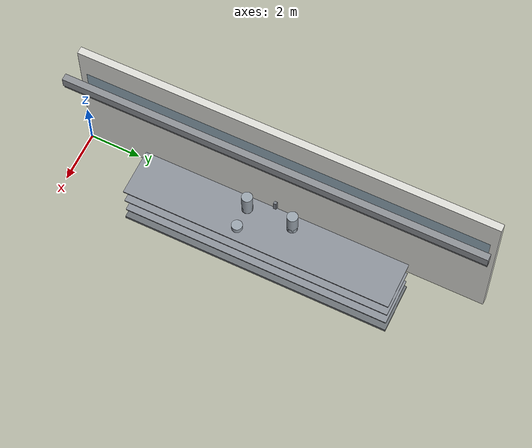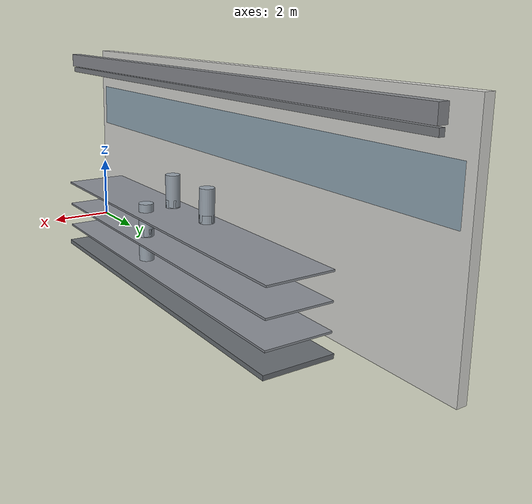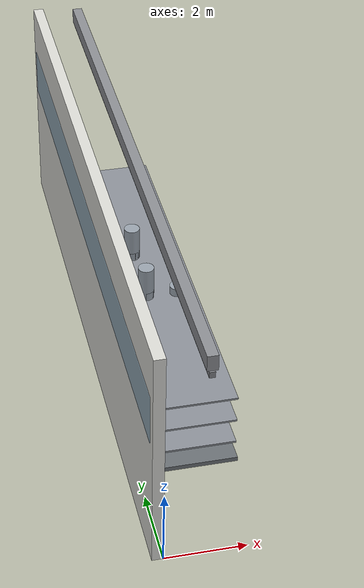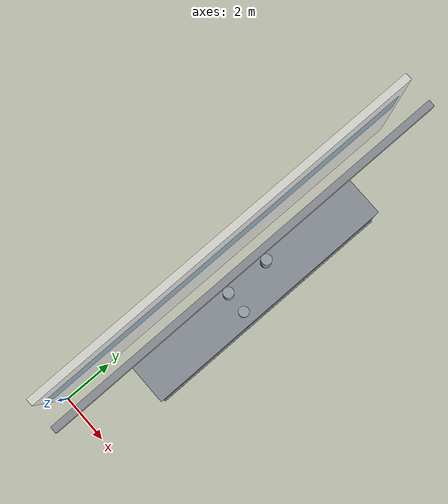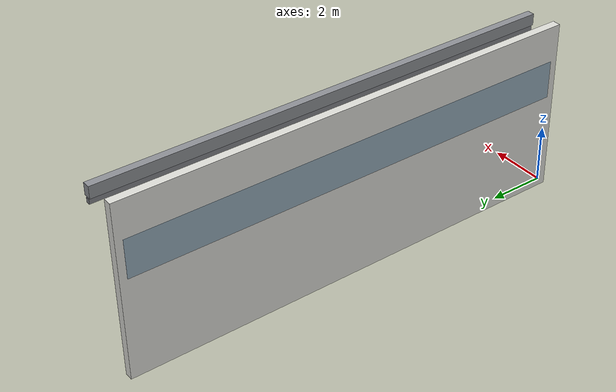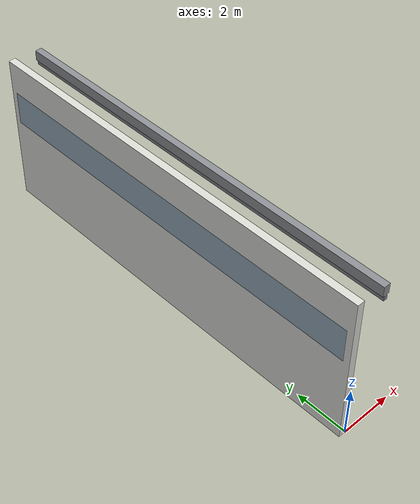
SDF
<sdf version="1.10">
 <world name="textile_mill">
  <model name="wall_west">
   <static>true</static>
   <pose>-0.140 8.000 3.000 0 0 0</pose>
   <link name="l">
    <collision name="c"><geometry><box><size>0.280 16.000 6.000</size></box></geometry></collision>
    <visual name="v">
     <geometry><box><size>0.280 16.000 6.000</size></box></geometry>
     <material>
      <ambient>0.860 0.860 0.840 1.0</ambient>
      <diffuse>0.860 0.860 0.840 1.0</diffuse>
      <specular>0.18 0.18 0.18 1</specular>
      <pbr><metal><roughness>0.9</roughness><metalness>0.0</metalness></metal></pbr>
     </material>
    </visual>
   </link>
  </model>
  <model name="win_w">
   <static>true</static>
   <pose>-0.140 8.000 4.100 0 0 0</pose>
   <link name="l">
    <collision name="c"><geometry><box><size>0.300 15.500 1.300</size></box></geometry></collision>
    <visual name="v">
     <geometry><box><size>0.300 15.500 1.300</size></box></geometry>
     <material>
      <ambient>0.420 0.580 0.700 0.55</ambient>
      <diffuse>0.420 0.580 0.700 0.55</diffuse>
      <specular>0.18 0.18 0.18 1</specular>
      <pbr><metal><roughness>0.15</roughness><metalness>0.1</metalness></metal></pbr>
     </material>
    </visual>
   </link>
  </model>
  <model name="truss_0">
   <static>true</static>
   <pose>1.000 8.000 5.700 0 0 0</pose>
   <link name="l">
    <collision name="c"><geometry><box><size>0.260 16.000 0.400</size></box></geometry></collision>
    <visual name="v">
     <geometry><box><size>0.260 16.000 0.400</size></box></geometry>
     <material>
      <ambient>0.550 0.560 0.580 1.0</ambient>
      <diffuse>0.550 0.560 0.580 1.0</diffuse>
      <specular>0.18 0.18 0.18 1</specular>
      <pbr><metal><roughness>0.4</roughness><metalness>0.6</metalness></metal></pbr>
     </material>
    </visual>
   </link>
  </model>
  <model name="truss_lo_0">
   <static>true</static>
   <pose>1.000 8.000 5.380 0 0 0</pose>
   <link name="l">
    <collision name="c"><geometry><box><size>0.140 16.000 0.160</size></box></geometry></collision>
    <visual name="v">
     <geometry><box><size>0.140 16.000 0.160</size></box></geometry>
     <material>
      <ambient>0.500 0.510 0.530 1.0</ambient>
      <diffuse>0.500 0.510 0.530 1.0</diffuse>
      <specular>0.18 0.18 0.18 1</specular>
      <pbr><metal><roughness>0.65</roughness><metalness>0.6</metalness></metal></pbr>
     </material>
    </visual>
   </link>
  </model>
  <model name="dash_0">
   <static>true</static>
   <pose>1.800 8.000 0.012 0 0 0</pose>
   <link name="l">
    <visual name="v">
     <geometry><box><size>0.700 0.090 0.020</size></box></geometry>
     <material>
      <ambient>0.900 0.900 0.860 1.0</ambient>
      <diffuse>0.900 0.900 0.860 1.0</diffuse>
      <specular>0.18 0.18 0.18 1</specular>
      <pbr><metal><roughness>0.65</roughness><metalness>0.0</metalness></metal></pbr>
     </material>
    </visual>
   </link>
  </model>
  <model name="rack_empty_base">
   <static>true</static>
   <pose>1.550 8.000 0.060 0 0 0</pose>
   <link name="l">
    <collision name="c"><geometry><box><size>1.900 10.500 0.120</size></box></geometry></collision>
    <visual name="v">
     <geometry><box><size>1.900 10.500 0.120</size></box></geometry>
     <material>
      <ambient>0.420 0.440 0.460 1.0</ambient>
      <diffuse>0.420 0.440 0.460 1.0</diffuse>
      <specular>0.18 0.18 0.18 1</specular>
      <pbr><metal><roughness>0.65</roughness><metalness>0.5</metalness></metal></pbr>
     </material>
    </visual>
   </link>
  </model>
  <model name="rack_empty_shelf_0">
   <static>true</static>
   <pose>1.550 8.000 0.620 0 0 0</pose>
   <link name="l">
    <collision name="c"><geometry><box><size>1.800 10.440 0.050</size></box></geometry></collision>
    <visual name="v">
     <geometry><box><size>1.800 10.440 0.050</size></box></geometry>
     <material>
      <ambient>0.550 0.570 0.600 1.0</ambient>
      <diffuse>0.550 0.570 0.600 1.0</diffuse>
      <specular>0.18 0.18 0.18 1</specular>
      <pbr><metal><roughness>0.4</roughness><metalness>0.55</metalness></metal></pbr>
     </material>
    </visual>
   </link>
  </model>
  <model name="rack_empty_can_0_2_a">
   <static>true</static>
   <pose>1.132 7.110 1.120 0.0000 0.0000 0.0000</pose>
   <link name="l">
    <collision name="c">
     <geometry><cylinder><radius>0.205</radius><length>0.900</length></cylinder></geometry>
    </collision>
    <visual name="v">
     <geometry><cylinder><radius>0.205</radius><length>0.900</length></cylinder></geometry>
     <material>
      <ambient>0.600 0.640 0.680 1.0</ambient>
      <diffuse>0.600 0.640 0.680 1.0</diffuse>
      <specular>0.18 0.18 0.18 1</specular>
      <pbr><metal><roughness>0.6</roughness><metalness>0.0</metalness></metal></pbr>
     </material>
    </visual>
   </link>
  </model>
  <model name="rack_empty_can_0_2_b">
   <static>true</static>
   <pose>1.968 7.110 1.120 0.0000 0.0000 0.0000</pose>
   <link name="l">
    <collision name="c">
     <geometry><cylinder><radius>0.205</radius><length>0.900</length></cylinder></geometry>
    </collision>
    <visual name="v">
     <geometry><cylinder><radius>0.205</radius><length>0.900</length></cylinder></geometry>
     <material>
      <ambient>0.600 0.640 0.680 1.0</ambient>
      <diffuse>0.600 0.640 0.680 1.0</diffuse>
      <specular>0.18 0.18 0.18 1</specular>
      <pbr><metal><roughness>0.6</roughness><metalness>0.0</metalness></metal></pbr>
     </material>
    </visual>
   </link>
  </model>
  <model name="rack_empty_can_0_3_a">
   <static>true</static>
   <pose>1.132 8.890 1.120 0.0000 0.0000 0.0000</pose>
   <link name="l">
    <collision name="c">
     <geometry><cylinder><radius>0.205</radius><length>0.900</length></cylinder></geometry>
    </collision>
    <visual name="v">
     <geometry><cylinder><radius>0.205</radius><length>0.900</length></cylinder></geometry>
     <material>
      <ambient>0.600 0.640 0.680 1.0</ambient>
      <diffuse>0.600 0.640 0.680 1.0</diffuse>
      <specular>0.18 0.18 0.18 1</specular>
      <pbr><metal><roughness>0.6</roughness><metalness>0.0</metalness></metal></pbr>
     </material>
    </visual>
   </link>
  </model>
  <model name="rack_empty_shelf_1">
   <static>true</static>
   <pose>1.550 8.000 1.320 0 0 0</pose>
   <link name="l">
    <collision name="c"><geometry><box><size>1.800 10.440 0.050</size></box></geometry></collision>
    <visual name="v">
     <geometry><box><size>1.800 10.440 0.050</size></box></geometry>
     <material>
      <ambient>0.550 0.570 0.600 1.0</ambient>
      <diffuse>0.550 0.570 0.600 1.0</diffuse>
      <specular>0.18 0.18 0.18 1</specular>
      <pbr><metal><roughness>0.4</roughness><metalness>0.55</metalness></metal></pbr>
     </material>
    </visual>
   </link>
  </model>
  <model name="rack_empty_can_1_2_a">
   <static>true</static>
   <pose>1.132 7.110 1.820 0.0000 0.0000 0.0000</pose>
   <link name="l">
    <collision name="c">
     <geometry><cylinder><radius>0.205</radius><length>0.900</length></cylinder></geometry>
    </collision>
    <visual name="v">
     <geometry><cylinder><radius>0.205</radius><length>0.900</length></cylinder></geometry>
     <material>
      <ambient>0.600 0.640 0.680 1.0</ambient>
      <diffuse>0.600 0.640 0.680 1.0</diffuse>
      <specular>0.18 0.18 0.18 1</specular>
      <pbr><metal><roughness>0.6</roughness><metalness>0.0</metalness></metal></pbr>
     </material>
    </visual>
   </link>
  </model>
  <model name="rack_empty_can_1_2_b">
   <static>true</static>
   <pose>1.968 7.110 1.820 0.0000 0.0000 0.0000</pose>
   <link name="l">
    <collision name="c">
     <geometry><cylinder><radius>0.205</radius><length>0.900</length></cylinder></geometry>
    </collision>
    <visual name="v">
     <geometry><cylinder><radius>0.205</radius><length>0.900</length></cylinder></geometry>
     <material>
      <ambient>0.600 0.640 0.680 1.0</ambient>
      <diffuse>0.600 0.640 0.680 1.0</diffuse>
      <specular>0.18 0.18 0.18 1</specular>
      <pbr><metal><roughness>0.6</roughness><metalness>0.0</metalness></metal></pbr>
     </material>
    </visual>
   </link>
  </model>
  <model name="rack_empty_can_1_3_a">
   <static>true</static>
   <pose>1.132 8.890 1.820 0.0000 0.0000 0.0000</pose>
   <link name="l">
    <collision name="c">
     <geometry><cylinder><radius>0.205</radius><length>0.900</length></cylinder></geometry>
    </collision>
    <visual name="v">
     <geometry><cylinder><radius>0.205</radius><length>0.900</length></cylinder></geometry>
     <material>
      <ambient>0.600 0.640 0.680 1.0</ambient>
      <diffuse>0.600 0.640 0.680 1.0</diffuse>
      <specular>0.18 0.18 0.18 1</specular>
      <pbr><metal><roughness>0.6</roughness><metalness>0.0</metalness></metal></pbr>
     </material>
    </visual>
   </link>
  </model>
  <model name="rack_empty_shelf_2">
   <static>true</static>
   <pose>1.550 8.000 2.020 0 0 0</pose>
   <link name="l">
    <collision name="c"><geometry><box><size>1.800 10.440 0.050</size></box></geometry></collision>
    <visual name="v">
     <geometry><box><size>1.800 10.440 0.050</size></box></geometry>
     <material>
      <ambient>0.550 0.570 0.600 1.0</ambient>
      <diffuse>0.550 0.570 0.600 1.0</diffuse>
      <specular>0.18 0.18 0.18 1</specular>
      <pbr><metal><roughness>0.4</roughness><metalness>0.55</metalness></metal></pbr>
     </material>
    </visual>
   </link>
  </model>
  <model name="rack_empty_can_2_2_a">
   <static>true</static>
   <pose>1.132 7.110 2.520 0.0000 0.0000 0.0000</pose>
   <link name="l">
    <collision name="c">
     <geometry><cylinder><radius>0.205</radius><length>0.900</length></cylinder></geometry>
    </collision>
    <visual name="v">
     <geometry><cylinder><radius>0.205</radius><length>0.900</length></cylinder></geometry>
     <material>
      <ambient>0.600 0.640 0.680 1.0</ambient>
      <diffuse>0.600 0.640 0.680 1.0</diffuse>
      <specular>0.18 0.18 0.18 1</specular>
      <pbr><metal><roughness>0.6</roughness><metalness>0.0</metalness></metal></pbr>
     </material>
    </visual>
   </link>
  </model>
  <model name="rack_empty_can_2_3_a">
   <static>true</static>
   <pose>1.132 8.890 2.520 0.0000 0.0000 0.0000</pose>
   <link name="l">
    <collision name="c">
     <geometry><cylinder><radius>0.205</radius><length>0.900</length></cylinder></geometry>
    </collision>
    <visual name="v">
     <geometry><cylinder><radius>0.205</radius><length>0.900</length></cylinder></geometry>
     <material>
      <ambient>0.600 0.640 0.680 1.0</ambient>
      <diffuse>0.600 0.640 0.680 1.0</diffuse>
      <specular>0.18 0.18 0.18 1</specular>
      <pbr><metal><roughness>0.6</roughness><metalness>0.0</metalness></metal></pbr>
     </material>
    </visual>
   </link>
  </model>
  <model name="rack_empty_post_2_a">
   <static>true</static>
   <pose>0.660 8.000 1.220 0 0 0</pose>
   <link name="l">
    <collision name="c"><geometry><box><size>0.110 0.110 2.440</size></box></geometry></collision>
    <visual name="v">
     <geometry><box><size>0.110 0.110 2.440</size></box></geometry>
     <material>
      <ambient>0.480 0.500 0.530 1.0</ambient>
      <diffuse>0.480 0.500 0.530 1.0</diffuse>
      <specular>0.18 0.18 0.18 1</specular>
      <pbr><metal><roughness>0.65</roughness><metalness>0.5</metalness></metal></pbr>
     </material>
    </visual>
   </link>
  </model>
 </world>
</sdf>
